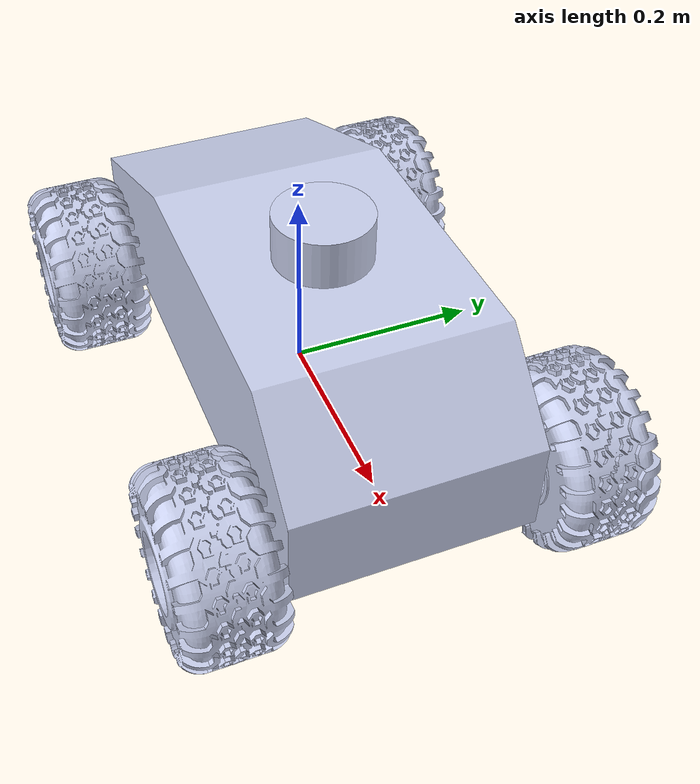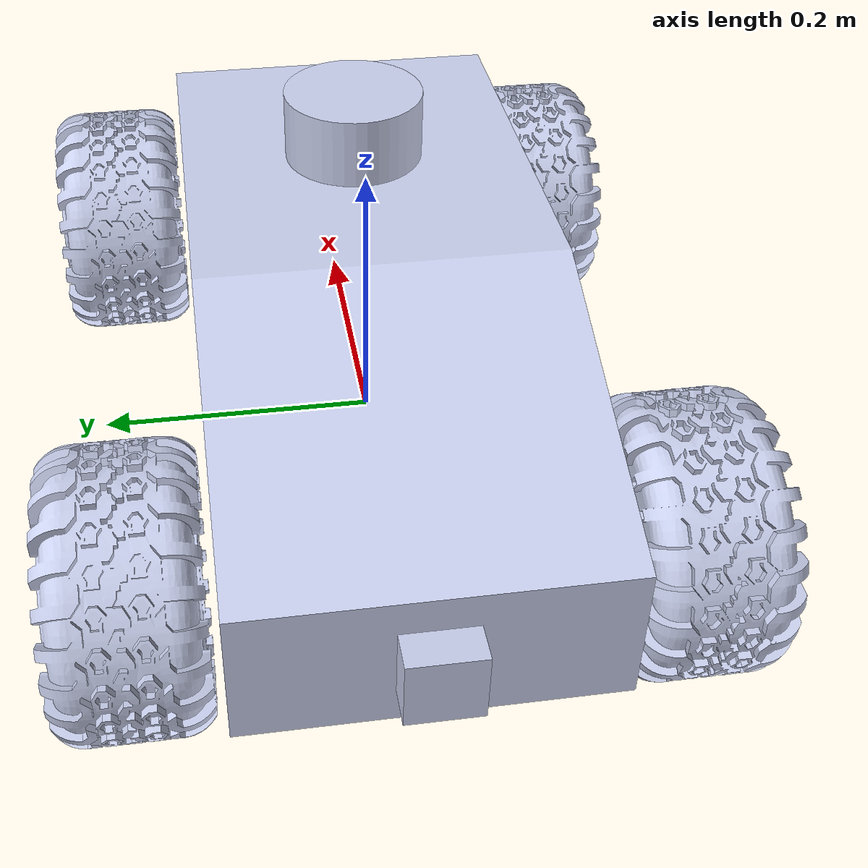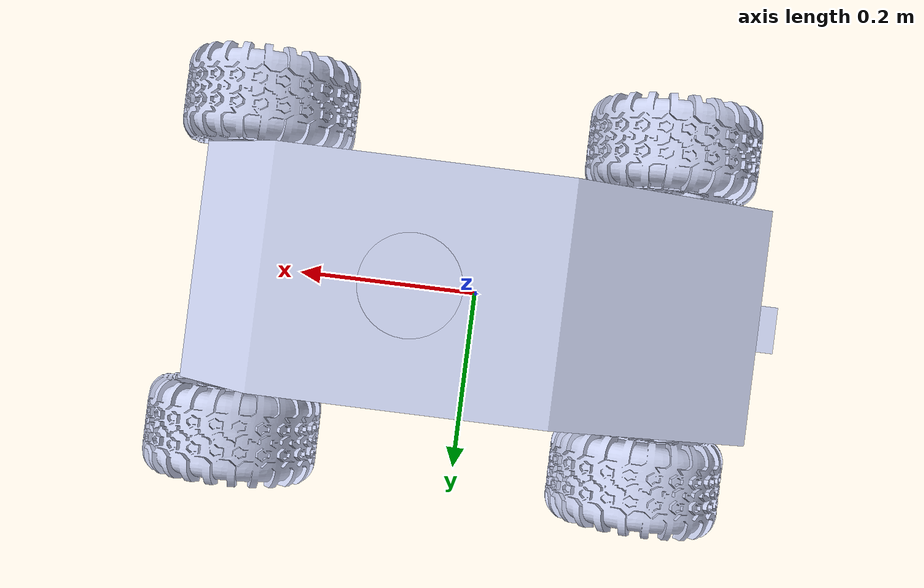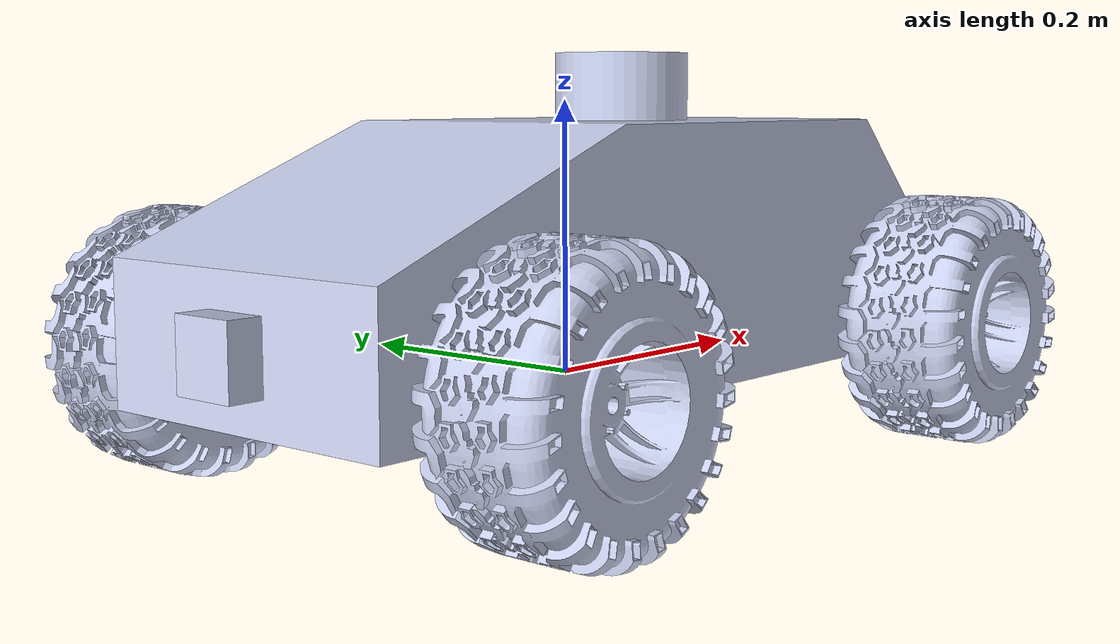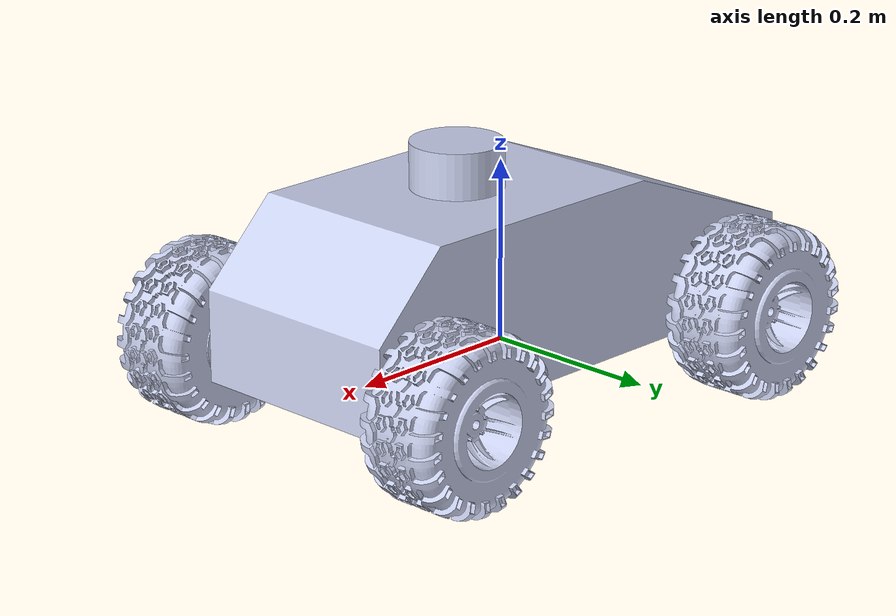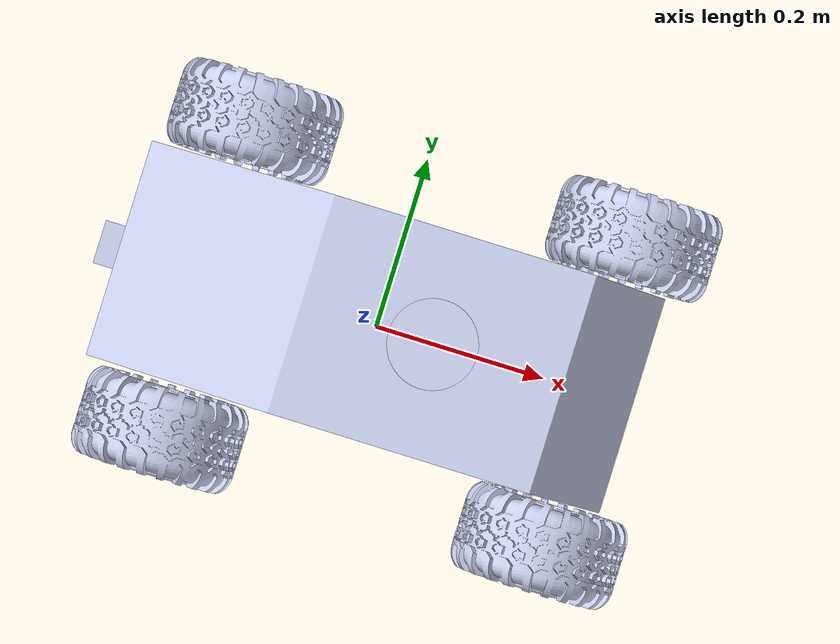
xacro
<?xml version ="1.0"?>

<robot
  xmlns:xacro="http://www.ros.org/wiki/xacro"
  name="my_car">

    <gazebo>
    <plugin name="four_wheeled_robot_diff_drive" filename="libgazebo_ros_diff_drive.so">
    <!-- Number of wheel pairs -->
    <num_wheel_pairs>2</num_wheel_pairs>

    <!-- wheels0 -->
    <left_joint>front_left_wheel_joint</left_joint>
    <right_joint>front_right_wheel_joint</right_joint>

    <!-- wheels1-->
    <left_joint>back_left_wheel_joint</left_joint>
    <right_joint>back_right_wheel_joint</right_joint>

    <!-- kinematics -->
    <wheel_separation>0.27</wheel_separation>
    <wheel_separation>0.27</wheel_separation>

    <wheel_diameter>0.2</wheel_diameter>
    <wheel_diameter>0.2</wheel_diameter>

    <!-- limits -->
    <max_wheel_torque>2000</max_wheel_torque>
    <max_wheel_acceleration>1.0</max_wheel_acceleration>

    <!-- output -->
    <publish_odom>true</publish_odom>
    <publish_odom_tf>true</publish_odom_tf>
    <publish_wheel_tf>true</publish_wheel_tf>

    <odometry_frame>odom</odometry_frame>
    <robot_base_frame>base_link</robot_base_frame>
     </plugin>
    </gazebo>

      <gazebo reference="lidar_link">

        <sensor name="laser" type="ray">
            <pose> 0 0 0 0 0 0 </pose>
            <visualize>true</visualize>
            <update_rate>10</update_rate>
            <ray>
                <scan>
                    <horizontal>
                	        <samples>360</samples>
                        <min_angle>-3.14</min_angle>
                        <max_angle>3.14</max_angle>
                    </horizontal>
                </scan>
                <range>
                    <min>0.2</min>
                    <max>5</max>
                </range>
            </ray>
            <plugin name="laser_controller" filename="libgazebo_ros_ray_sensor.so">
                <ros>
                    <argument>~/out:=scan</argument>
                </ros>
                <output_type>sensor_msgs/LaserScan</output_type> <!-- baad mai explain kar dunga-->
                <frame_name>lidar_link</frame_name>
            </plugin>
        </sensor>
    </gazebo>

    <gazebo reference="camera_link">
        <sensor type="depth" name="camera1">
        <update_rate>30.0</update_rate>
        <visualize>true</visualize>
        <camera name="head">
            <horizontal_fov>1.3962634</horizontal_fov>
            <image>
            <width>800</width>
            <height>800</height>
            <format>R8G8B8</format>
            </image>
            <clip>
            <near>0.02</near>
            <far>300</far>
            </clip>
            <noise>
            <type>gaussian</type>
            <!-- Noise is sampled independently per pixel on each frame.
                That pixel's noise value is added to each of its color
                channels, which at that point lie in the range [0,1]. -->
            <mean>0.0</mean>
            <stddev>0.007</stddev>
            </noise>
        </camera>
        <plugin name="depth_camera_controller" filename="libgazebo_ros_camera.so">
            <alwaysOn>true</alwaysOn>
            <updateRate>0.0</updateRate>
            <cameraName>rrbot/camera1</cameraName>
            <depthImageTopicName>image_raw</depthImageTopicName>
            <cameraInfoTopicName>camera_info</cameraInfoTopicName>
            <pointCloudTopicName>points</pointCloudTopicName>
            <frame_name>camera_virtual_link</frame_name>
            <hackBaseline>0.07</hackBaseline>
            <distortionK1>0.0</distortionK1>
            <distortionK2>0.0</distortionK2>
            <distortionK3>0.0</distortionK3>
            <distortionT1>0.0</distortionT1>
            <distortionT2>0.0</distortionT2>
        </plugin>
        </sensor>
  </gazebo>

  <link name = "base_link"/>

  <joint name="base_link_joint" type="fixed">
  <parent link="base_link"/>
  <child link="chassis_link"/>
  </joint>

  <joint name="camera_link_joint" type="fixed">
  <parent link="chassis_link"/>
  <child link="camera_link"/>
  <origin xyz="-0.3 0 0.05" rpy="0 0 3.14"/>
  </joint>

  <link
    name="camera_link">
    <inertial>
      <origin
        xyz="0.0 0.0 0.0"
        rpy="0 0 0" />
      <mass
        value="0.5" />
      <inertia
        ixx="0.190509835636479"
        ixy="6.39221351239185E-17"
        ixz="-0.0190511691928817"
        iyy="0.699596561318015"
        iyz="-2.28526334235244E-16"
        izz="0.76460143156389" />
    </inertial>
    <visual>
      <origin
        xyz="0 0 0"
        rpy="0 0 0" />
      <geometry>
      	<box size="0.05 0.05 0.05"/>
      </geometry>
      <material
        name="">
        <color
          rgba="0.792156862745098 0.819607843137255 0.933333333333333 1" />
      </material>
    </visual>
    <collision>
      <origin
        xyz="0 0 0"
        rpy="0 0 0" />
      <geometry>

      	<box size="0.05 0.05 0.05"/>
      </geometry>
    </collision>
  </link>

  <joint name="camera_virtual_link_joint" type="fixed">
  <parent link="camera_link"/>
  <child link="camera_virtual_link"/>
  <origin xyz="0.3 0.0 0.05" rpy="-1.57 0 -1.57"/>
  </joint>

  <link name="camera_virtual_link">

  </link>

  <link
    name="chassis_link">
    <inertial>
      <origin
        xyz="0.0112738044858227 -3.33066907387547E-16 0.0840499365213715"
        rpy="0 0 0" />
      <mass
        value="24.5294117647059" />
      <inertia
        ixx="0.190509835636479"
        ixy="6.39221351239185E-17"
        ixz="-0.0190511691928817"
        iyy="0.699596561318015"
        iyz="-2.28526334235244E-16"
        izz="0.76460143156389" />
    </inertial>
    <visual>
      <origin
        xyz="0 0 0"
        rpy="0 0 0" />
      <geometry>
        <mesh
          filename="file://$(find gazebo_spawner_test)/meshes/chassis_link.STL" />
      </geometry>
      <material
        name="">
        <color
          rgba="0.792156862745098 0.819607843137255 0.933333333333333 1" />
      </material>
    </visual>
    <collision>
      <origin
        xyz="0 0 0"
        rpy="0 0 0" />
      <geometry>
        <mesh
          filename="file://$(find gazebo_spawner_test)/meshes/chassis_link.STL" />
      </geometry>
    </collision>
  </link>
  <link
    name="back_left_wheel">
    <inertial>
      <origin
        xyz="-2.15971540651339E-09 5.70067409944031E-10 0.0451521282995437"
        rpy="0 0 0" />
      <mass
        value="1.13679142679074" />
      <inertia
        ixx="0.00404658126782201"
        ixy="-1.69135866196412E-11"
        ixz="1.58008970912407E-09"
        iyy="0.00404658109275596"
        iyz="-6.34676008270201E-09"
        izz="0.00594385142197861" />
    </inertial>
    <visual>
      <origin
        xyz="0 0 0"
        rpy="0 0 0" />
      <geometry>
        <mesh
          filename="file://$(find gazebo_spawner_test)/meshes/back_left_wheel.STL" />
      </geometry>
      <material
        name="">
        <color
          rgba="0.792156862745098 0.819607843137255 0.933333333333333 1" />
      </material>
    </visual>
    <collision>
      <origin
        xyz="0 0 0"
        rpy="0 0 0" />
      <geometry>
        <mesh
          filename="file://$(find gazebo_spawner_test)/meshes/back_left_wheel.STL" />
      </geometry>
    </collision>
  </link>
  <joint
    name="back_left_wheel_joint"
    type="continuous">
    <origin
      xyz="0.25 -0.137 0.03"
      rpy="-1.5708 0 3.1416" />
    <parent
      link="chassis_link" />
    <child
      link="back_left_wheel" />
    <axis
      xyz="0 0 1" />
  </joint>
  <link
    name="back_right_wheel">
    <inertial>
      <origin
        xyz="5.13913893385176E-09 -1.98416019725478E-09 0.0451521239626138"
        rpy="0 0 0" />
      <mass
        value="1.13679151068804" />
      <inertia
        ixx="0.00404658159099977"
        ixy="2.07231639420493E-10"
        ixz="-6.0422205391207E-09"
        iyy="0.00404658153471952"
        iyz="1.29881814956333E-09"
        izz="0.00594385172564059" />
    </inertial>
    <visual>
      <origin
        xyz="0 0 0"
        rpy="0 0 0" />
      <geometry>
        <mesh
          filename="file://$(find gazebo_spawner_test)/meshes/back_right_wheel.STL" />
      </geometry>
      <material
        name="">
        <color
          rgba="0.792156862745098 0.819607843137255 0.933333333333333 1" />
      </material>
    </visual>
    <collision>
      <origin
        xyz="0 0 0"
        rpy="0 0 0" />
      <geometry>
        <mesh
          filename="file://$(find gazebo_spawner_test)/meshes/back_right_wheel.STL" />
      </geometry>
    </collision>
  </link>
  <joint
    name="back_right_wheel_joint"
    type="continuous">
    <origin
      xyz="0.25 0.137 0.03"
      rpy="1.5708 0 3.1416" />
    <parent
      link="chassis_link" />
    <child
      link="back_right_wheel" />
    <axis
      xyz="0 0 -1" />
  </joint>
  <link
    name="front_right_wheel">
    <inertial>
      <origin
        xyz="3.73582248469617E-09 1.8696467152246E-09 0.0451521241900724"
        rpy="0 0 0" />
      <mass
        value="1.13679151055341" />
      <inertia
        ixx="0.00404658164229885"
        ixy="-1.75234018719786E-10"
        ixz="-8.11053487029368E-10"
        iyy="0.00404658148291099"
        iyz="6.7408233557629E-09"
        izz="0.00594385172529358" />
    </inertial>
    <visual>
      <origin
        xyz="0 0 0"
        rpy="0 0 0" />
      <geometry>
        <mesh
          filename="file://$(find gazebo_spawner_test)/meshes/front_right_wheel.STL" />
      </geometry>
      <material
        name="">
        <color
          rgba="0.792156862745098 0.819607843137255 0.933333333333333 1" />
      </material>
    </visual>
    <collision>
      <origin
        xyz="0 0 0"
        rpy="0 0 0" />
      <geometry>
        <mesh
          filename="file://$(find gazebo_spawner_test)/meshes/front_right_wheel.STL" />
      </geometry>
    </collision>
  </link>
  <joint
    name="front_right_wheel_joint"
    type="continuous">
    <origin
      xyz="-0.2 0.137 0.03"
      rpy="1.5708 0 3.1416" />
    <parent
      link="chassis_link" />
    <child
      link="front_right_wheel" />
    <axis
      xyz="0 0 -1" />
  </joint>
  <link
    name="front_left_wheel">
    <inertial>
      <origin
        xyz="-4.64578125969339E-09 4.40435640736148E-09 0.0451521240784068"
        rpy="0 0 0" />
      <mass
        value="1.13679151050024" />
      <inertia
        ixx="0.00404658159914115"
        ixy="1.03963568815045E-10"
        ixz="-2.3057273935988E-09"
        iyy="0.00404658152593826"
        iyz="-6.01974368166515E-09"
        izz="0.00594385172531666" />
    </inertial>
    <visual>
      <origin
        xyz="0 0 0"
        rpy="0 0 0" />
      <geometry>
        <mesh
          filename="file://$(find gazebo_spawner_test)/meshes/front_left_wheel.STL" />
      </geometry>
      <material
        name="">
        <color
          rgba="0.792156862745098 0.819607843137255 0.933333333333333 1" />
      </material>
    </visual>
    <collision>
      <origin
        xyz="0 0 0"
        rpy="0 0 0" />
      <geometry>
        <mesh
          filename="file://$(find gazebo_spawner_test)/meshes/front_left_wheel.STL" />
      </geometry>
    </collision>
  </link>
  <joint
    name="front_left_wheel_joint"
    type="continuous">
    <origin
      xyz="-0.2 -0.13893 0.03"
      rpy="-1.5708 0 3.1416" />
    <parent
      link="chassis_link" />
    <child
      link="front_left_wheel" />
    <axis
      xyz="0 0 1" />
  </joint>
  <link
    name="lidar_link">
    <inertial>
      <origin
        xyz="-2.77555756156289E-16 -1.66533453693773E-16 0.025"
        rpy="0 0 0" />
      <mass
        value="0.392699081698724" />
      <inertia
        ixx="0.000327249234748937"
        ixy="1.41172157876311E-21"
        ixz="-1.7317584180557E-18"
        iyy="0.000327249234748937"
        iyz="-5.54539010485417E-19"
        izz="0.000490873852123405" />
    </inertial>
    <visual>
      <origin
        xyz="0 0 0"
        rpy="0 0 0" />
      <geometry>
        <mesh
          filename="file://$(find gazebo_spawner_test)/meshes/lidar_link.STL" />
      </geometry>
      <material
        name="">
        <color
          rgba="0.792156862745098 0.819607843137255 0.933333333333333 1" />
      </material>
    </visual>
    <collision>
      <origin
        xyz="0 0 0"
        rpy="0 0 0" />
      <geometry>
        <mesh
          filename="file://$(find gazebo_spawner_test)/meshes/lidar_link.STL" />
      </geometry>
    </collision>
  </link>
  <joint
    name="lidar_joint"
    type="fixed">
    <origin
      xyz="0.065294 0 0.18471"
      rpy="0 0 0" />

    <parent
      link="chassis_link" />
    <child
      link="lidar_link" />
    <axis
      xyz="0 0 0" />
  </joint>

</robot>
